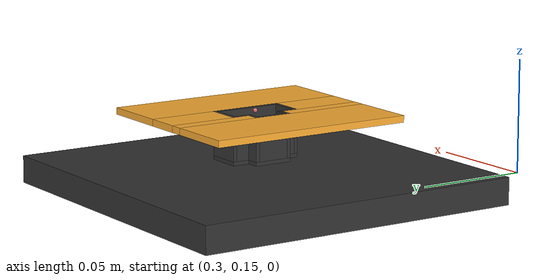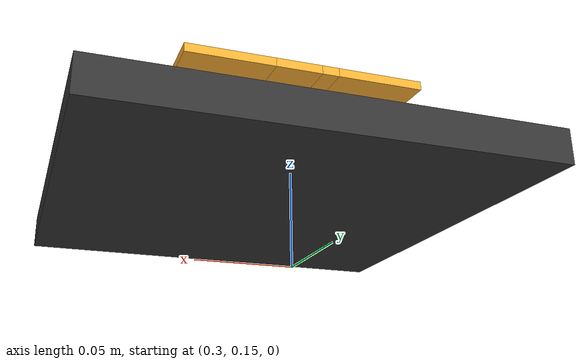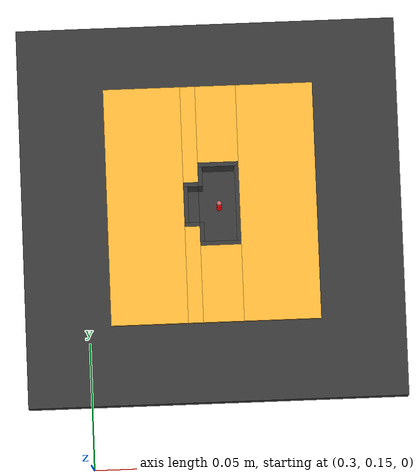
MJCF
<mujoco model="port">

    <compiler angle="radian" />

    <asset>
        <texture builtin="flat" height="256" width="256" rgb1="1 1 1" rgb2="1 1 1" type="skybox" />
        <material name="table_mat" reflectance="0" rgba="0.2 0.2 0.2 1" shininess="0.5" specular="0" />
        <material name="port_mat" reflectance="0" rgba="1 0.69 0.2 1" shininess="0.5" specular="0" />
    </asset>

    <worldbody>
        <body pos="0.35 0.25 0.0" name="port_adapter">
            <inertial pos="0. 0. -0.0115" quat="1 0 0 0" mass="3.88125" diaginertia="0.02038594 0.02038594 0.04042969" />
            <geom solimp="0.9 0.95 0.001 0.5 2" solref="0.02 1" condim="6" name="plate" pos="0.0 0.0 0" size="0.075 0.075 0.006" type="box" density="2700" material="table_mat" />

            <body name="port1" pos="0.011 0.001 0.03" quat="0 1 0 0">
                <geom solimp="0.9 0.95 0.001 0.5 2" solref="0.02 1" condim="6"  pos="-0.000824999988079071 0.0 0.009600000381469725" type="box" material="table_mat" size="0.000824999988079071 0.014579999923706056 0.009600000381469726" />
                <geom solimp="0.9 0.95 0.001 0.5 2" solref="0.02 1" condim="6"  pos="-0.007954999923706055 0.01540499973297119 0.009600000381469725" type="box" material="table_mat" size="0.007954999923706055 0.0008249998092651368 0.009600000381469726" />
                <geom solimp="0.9 0.95 0.001 0.5 2" solref="0.02 1" condim="6"  pos="-0.007954999923706055 -0.015404999732971193 0.009600000381469725" type="box" material="table_mat" size="0.007954999923706055 0.0008249998092651368 0.009600000381469726" />
                <geom solimp="0.9 0.95 0.001 0.5 2" solref="0.02 1" condim="6" pos="-0.015085000038146971 0.010784999847412107 0.009600000381469728" type="box" material="table_mat" size="0.0008249998092651368 0.0037950000762939453 0.009600000381469726" />
                <geom solimp="0.9 0.95 0.001 0.5 2" solref="0.02 1" condim="6" pos="-0.015085000038146971 -0.010784999847412107 0.009600000381469728" type="box" material="table_mat" size="0.0008249998092651368 0.0037950000762939453 0.009600000381469726" />
                <geom solimp="0.9 0.95 0.001 0.5 2" solref="0.02 1" condim="6" pos="-0.01884000015258789 0.007815000057220458 0.009600000381469726" type="box" material="table_mat" size="0.0029300003051757812 0.000825000286102295 0.009600000381469726" />
                <geom solimp="0.9 0.95 0.001 0.5 2" solref="0.02 1" condim="6" pos="-0.01884000015258789 -0.007815000057220458 0.009600000381469726" type="box" material="table_mat" size="0.0029300003051757812 0.000825000286102295 0.009600000381469726" />
                <geom solimp="0.9 0.95 0.001 0.5 2" solref="0.02 1" condim="6" pos="-0.02094500064849854 -8.79485285575174e-20 0.009600000381469726" type="box" material="table_mat" size="0.0008249998092651368 0.006989999771118164 0.009600000381469726" />
                <geom solimp="0.9 0.95 0.001 0.5 2" solref="0.02 1" condim="6" pos="-0.007954999923706055 4.766751232728594e-20 0.020025000572204587" type="box" material="table_mat" size="0.007954999923706055 0.016229999542236327 0.0008249998092651368" />
                <geom solimp="0.9 0.95 0.001 0.5 2" solref="0.02 1" condim="6" pos="-0.01884000015258789 0.0 0.02002500057220459" type="box" material="table_mat" size="0.0029300003051757812 0.008640000343322754 0.0008249998092651368" />

                <geom solimp="0.9 0.95 0.001 0.5 2" solref="0.02 1" condim="6" pos="-0.03677000045776367 0.0 0.0015" type="box" material="port_mat" size="0.015 0.046229999542236326 0.0015" />
                <geom solimp="0.9 0.95 0.001 0.5 2" solref="0.02 1" condim="6" pos="0.015 0.0 0.0015" type="box" material="port_mat" size="0.015 0.046229999542236326 0.0015" />
                <geom solimp="0.9 0.95 0.001 0.5 2" solref="0.02 1" condim="6" pos="-0.01884000015258789 0.02743499994277954 0.0015" type="box" material="port_mat" size="0.0029300003051757812 0.018794999599456786 0.0015" />
                <geom solimp="0.9 0.95 0.001 0.5 2" solref="0.02 1" condim="6" pos="-0.007955 0.03122999954223633 0.0015" type="box" material="port_mat" size="0.007954999847412112 0.015 0.0015" />
                <geom solimp="0.9 0.95 0.001 0.5 2" solref="0.02 1" condim="6" pos="-0.018840000152587896 -0.02743499946594238 0.0015" type="box" material="port_mat" size="0.0029300003051757812 0.018795000076293946 0.0015" />
                <geom solimp="0.9 0.95 0.001 0.5 2" solref="0.02 1" condim="6" pos="-0.007955 -0.031229999542236323 0.0015" type="box" material="port_mat" size="0.007954999847412112 0.015 0.0015" />

                <site name="port_bottom" type="sphere" pos="-0.008 0 0.0192" quat="0.7071 0 0 0.7071" size="0.001 0.001 0.001" rgba="1 0 0 1"/>
                <site name="port_centre" type="sphere" pos="-0.008 0 0.009600000381469725" quat="0.7071 0 0 0.7071" size="0.001 0.001 0.001" rgba="1 0 0 1"/>
                <site name="port_top" type="sphere" pos="-0.008 0 0.0" quat="0.7071 0 0 0.7071" size="0.001 0.001 0.001" rgba="0.8 0.4 0.4 1"/>
            </body>
        </body>
    </worldbody>

    <sensor>
        <framepos name="port_bottom_pos" objtype="site" objname="port_bottom"/>
        <framequat name="port_bottom_quat" objtype="site" objname="port_bottom"/>
        <framepos name="port_centre_pos" objtype="site" objname="port_centre"/>
        <framequat name="port_centre_quat" objtype="site" objname="port_centre"/>
        <framepos name="port_top_pos" objtype="site" objname="port_top"/>
        <framequat name="port_top_quat" objtype="site" objname="port_top"/>
    </sensor>

    <visual>
        <global offwidth="1920" offheight="1080" />
        <scale framewidth="0.005" framelength="0.1" />
    </visual>

</mujoco>
